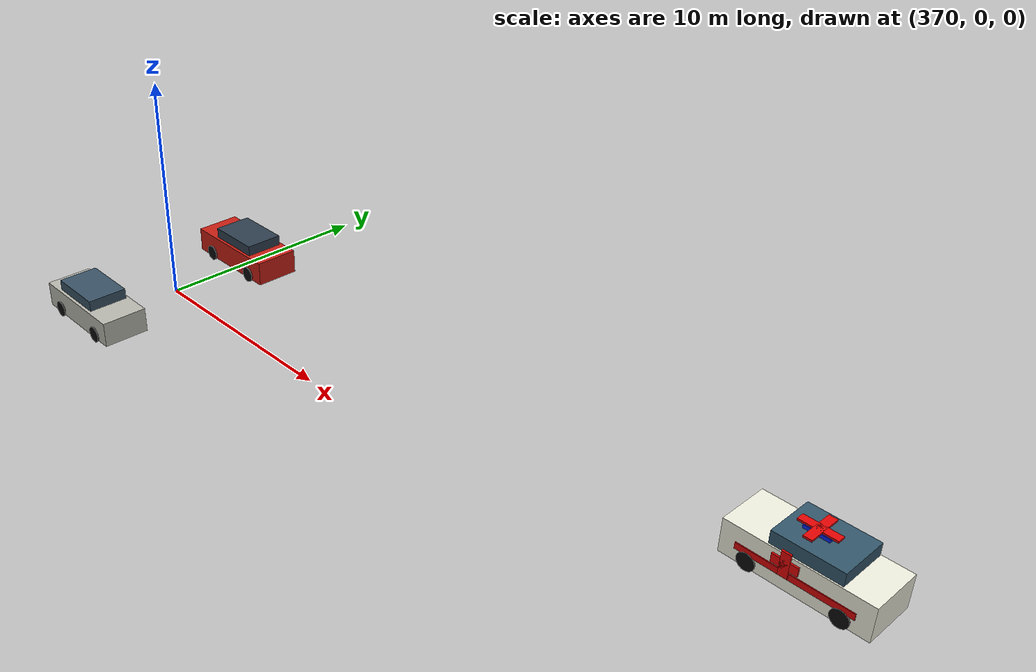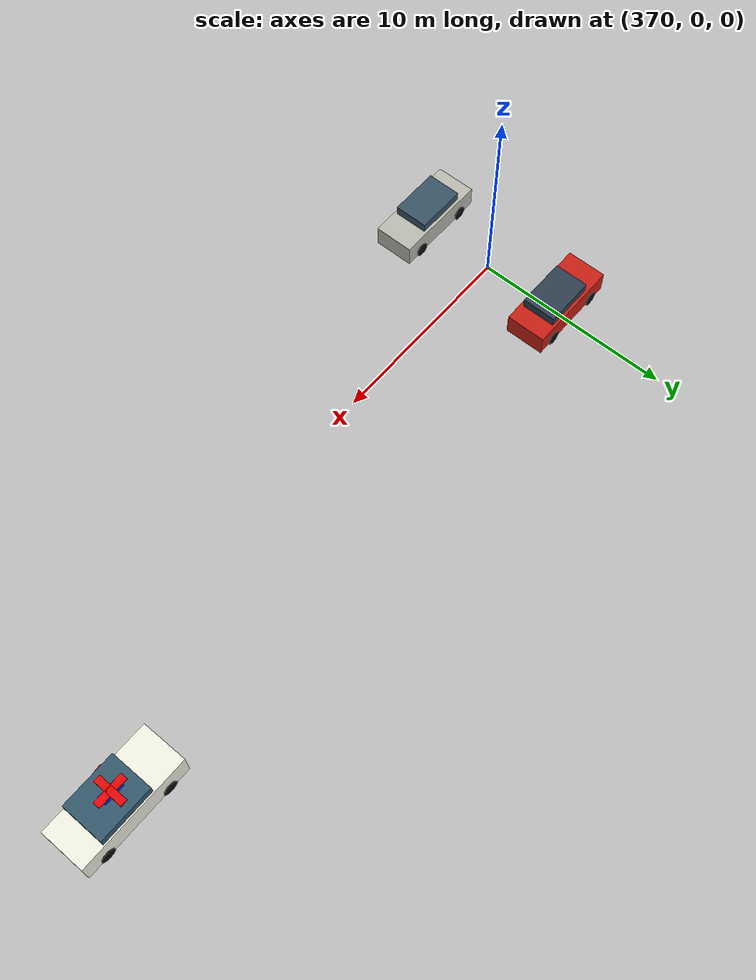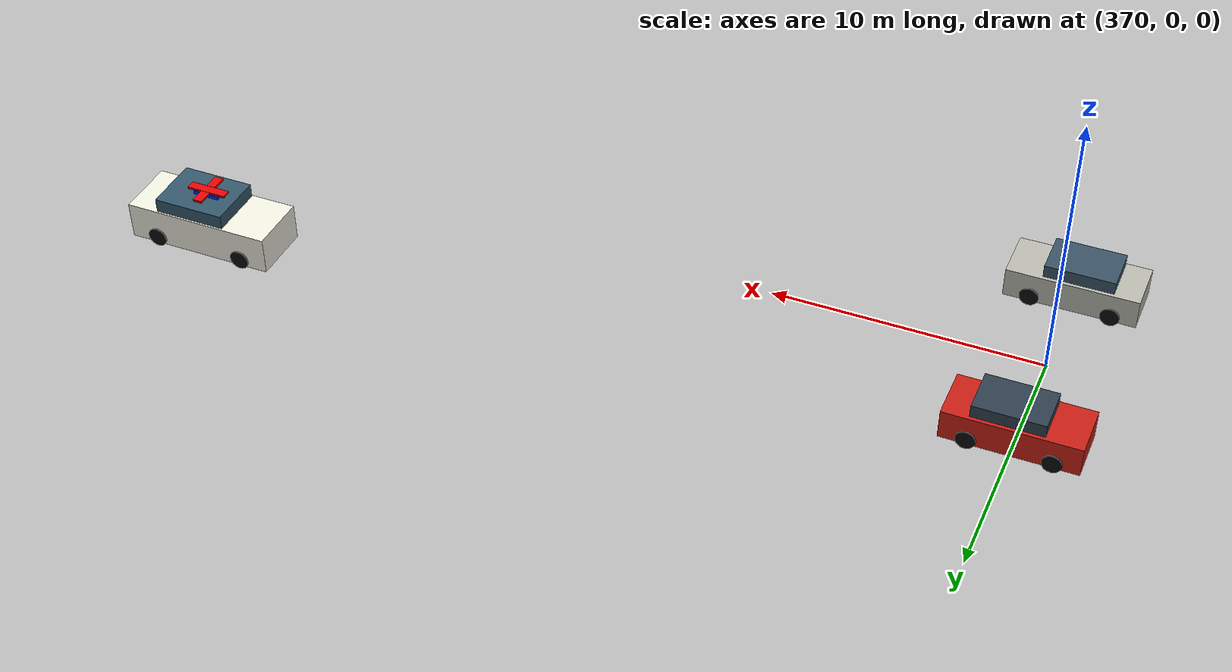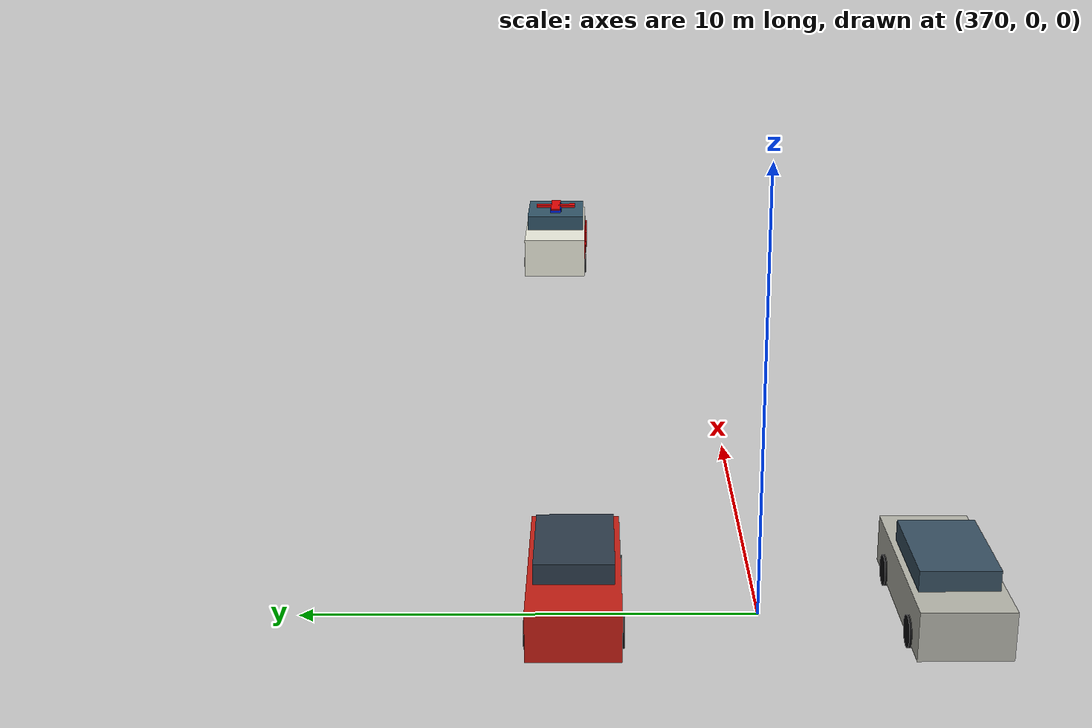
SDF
<sdf version="1.9">
 <world name="smart_city">
  <model name="downtown_car_17">
   <static>true</static>
   <pose>370 -4 0 0 0 0</pose>
   <link name="car">
    <visual name="body">
     <pose>0 0 0.72 0 0 0</pose>
     <geometry><box><size>4.8 2.0 1.1</size></box></geometry>
     <material><ambient>0.72 0.72 0.68 1</ambient><diffuse>0.72 0.72 0.68 1</diffuse></material>
    </visual>
    <visual name="cabin">
     <pose>-0.18 0 1.38 0 0 0</pose>
     <geometry><box><size>2.55 1.72 0.72</size></box></geometry>
     <material><ambient>0.22 0.32 0.39 1</ambient><diffuse>0.22 0.32 0.39 1</diffuse></material>
    </visual>
    <visual name="wheel_fl">
     <pose>1.45 0.96 0.36 1.5708 0 0</pose>
     <geometry><cylinder><radius>0.35</radius><length>0.18</length></cylinder></geometry>
     <material><ambient>0.04 0.04 0.045 1</ambient><diffuse>0.04 0.04 0.045 1</diffuse></material>
    </visual>
    <visual name="wheel_fr">
     <pose>1.45 -0.96 0.36 1.5708 0 0</pose>
     <geometry><cylinder><radius>0.35</radius><length>0.18</length></cylinder></geometry>
     <material><ambient>0.04 0.04 0.045 1</ambient><diffuse>0.04 0.04 0.045 1</diffuse></material>
    </visual>
    <visual name="wheel_rl">
     <pose>-1.45 0.96 0.36 1.5708 0 0</pose>
     <geometry><cylinder><radius>0.35</radius><length>0.18</length></cylinder></geometry>
     <material><ambient>0.04 0.04 0.045 1</ambient><diffuse>0.04 0.04 0.045 1</diffuse></material>
    </visual>
    <visual name="wheel_rr">
     <pose>-1.45 -0.96 0.36 1.5708 0 0</pose>
     <geometry><cylinder><radius>0.35</radius><length>0.18</length></cylinder></geometry>
     <material><ambient>0.04 0.04 0.045 1</ambient><diffuse>0.04 0.04 0.045 1</diffuse></material>
    </visual>
   </link>
  </model>
  <model name="downtown_car_25">
   <static>true</static>
   <pose>370 4 0 0 0 3.1416</pose>
   <link name="car">
    <visual name="body">
     <pose>0 0 0.72 0 0 0</pose>
     <geometry><box><size>4.8 2.0 1.1</size></box></geometry>
     <material><ambient>0.78 0.12 0.08 1</ambient><diffuse>0.78 0.12 0.08 1</diffuse></material>
    </visual>
    <visual name="cabin">
     <pose>-0.18 0 1.38 0 0 0</pose>
     <geometry><box><size>2.55 1.72 0.72</size></box></geometry>
     <material><ambient>0.18 0.24 0.30 1</ambient><diffuse>0.18 0.24 0.30 1</diffuse></material>
    </visual>
    <visual name="wheel_fl">
     <pose>1.45 0.96 0.36 1.5708 0 0</pose>
     <geometry><cylinder><radius>0.35</radius><length>0.18</length></cylinder></geometry>
     <material><ambient>0.04 0.04 0.045 1</ambient><diffuse>0.04 0.04 0.045 1</diffuse></material>
    </visual>
    <visual name="wheel_fr">
     <pose>1.45 -0.96 0.36 1.5708 0 0</pose>
     <geometry><cylinder><radius>0.35</radius><length>0.18</length></cylinder></geometry>
     <material><ambient>0.04 0.04 0.045 1</ambient><diffuse>0.04 0.04 0.045 1</diffuse></material>
    </visual>
    <visual name="wheel_rl">
     <pose>-1.45 0.96 0.36 1.5708 0 0</pose>
     <geometry><cylinder><radius>0.35</radius><length>0.18</length></cylinder></geometry>
     <material><ambient>0.04 0.04 0.045 1</ambient><diffuse>0.04 0.04 0.045 1</diffuse></material>
    </visual>
    <visual name="wheel_rr">
     <pose>-1.45 -0.96 0.36 1.5708 0 0</pose>
     <geometry><cylinder><radius>0.35</radius><length>0.18</length></cylinder></geometry>
     <material><ambient>0.04 0.04 0.045 1</ambient><diffuse>0.04 0.04 0.045 1</diffuse></material>
    </visual>
   </link>
  </model>
  <model name="district_ambulance_05">
   <static>true</static>
   <pose>400 5 0 0 0 3.1416</pose>
   <link name="ambulance">
    <visual name="body">
     <pose>0 0 0.82 0 0 0</pose>
     <geometry><box><size>5.6 2.25 1.4</size></box></geometry>
     <material><ambient>0.94 0.94 0.88 1</ambient><diffuse>0.94 0.94 0.88 1</diffuse></material>
    </visual>
    <visual name="medical_cabin">
     <pose>-0.25 0 1.62 0 0 0</pose>
     <geometry><box><size>2.7 2.12 0.86</size></box></geometry>
     <material><ambient>0.20 0.34 0.42 1</ambient><diffuse>0.20 0.34 0.42 1</diffuse></material>
    </visual>
    <visual name="red_side_stripe">
     <pose>0 1.14 0.76 0 0 0</pose>
     <geometry><box><size>4.4 0.05 0.26</size></box></geometry>
     <material><ambient>0.86 0.02 0.02 1</ambient><diffuse>0.86 0.02 0.02 1</diffuse></material>
    </visual>
    <visual name="red_side_cross_v">
     <pose>0.35 1.18 1.18 0 0 0</pose>
     <geometry><box><size>0.36 0.08 1.0</size></box></geometry>
     <material><ambient>0.9 0.02 0.02 1</ambient><diffuse>0.9 0.02 0.02 1</diffuse></material>
    </visual>
    <visual name="red_side_cross_h">
     <pose>0.35 1.18 1.18 0 0 0</pose>
     <geometry><box><size>1.0 0.08 0.36</size></box></geometry>
     <material><ambient>0.9 0.02 0.02 1</ambient><diffuse>0.9 0.02 0.02 1</diffuse></material>
    </visual>
    <visual name="lightbar">
     <pose>0 0 2.1 0 0 0</pose>
     <geometry><box><size>1.0 0.42 0.18</size></box></geometry>
     <material>
      <ambient>0.02 0.15 0.95 1</ambient>
      <diffuse>0.02 0.15 0.95 1</diffuse>
      <emissive>0.02 0.08 0.65 1</emissive>
     </material>
    </visual>
    <visual name="roof_cross_long">
     <pose>0 0 2.22 0 0 0</pose>
     <geometry><box><size>1.5 0.34 0.08</size></box></geometry>
     <material><ambient>0.9 0.02 0.02 1</ambient><diffuse>0.9 0.02 0.02 1</diffuse></material>
    </visual>
    <visual name="roof_cross_wide">
     <pose>0 0 2.22 0 0 0</pose>
     <geometry><box><size>0.34 1.5 0.08</size></box></geometry>
     <material><ambient>0.9 0.02 0.02 1</ambient><diffuse>0.9 0.02 0.02 1</diffuse></material>
    </visual>
    <visual name="wheel_fl">
     <pose>1.72 1.08 0.36 1.5708 0 0</pose>
     <geometry><cylinder><radius>0.36</radius><length>0.18</length></cylinder></geometry>
     <material><ambient>0.04 0.04 0.045 1</ambient><diffuse>0.04 0.04 0.045 1</diffuse></material>
    </visual>
    <visual name="wheel_fr">
     <pose>1.72 -1.08 0.36 1.5708 0 0</pose>
     <geometry><cylinder><radius>0.36</radius><length>0.18</length></cylinder></geometry>
     <material><ambient>0.04 0.04 0.045 1</ambient><diffuse>0.04 0.04 0.045 1</diffuse></material>
    </visual>
    <visual name="wheel_rl">
     <pose>-1.72 1.08 0.36 1.5708 0 0</pose>
     <geometry><cylinder><radius>0.36</radius><length>0.18</length></cylinder></geometry>
     <material><ambient>0.04 0.04 0.045 1</ambient><diffuse>0.04 0.04 0.045 1</diffuse></material>
    </visual>
    <visual name="wheel_rr">
     <pose>-1.72 -1.08 0.36 1.5708 0 0</pose>
     <geometry><cylinder><radius>0.36</radius><length>0.18</length></cylinder></geometry>
     <material><ambient>0.04 0.04 0.045 1</ambient><diffuse>0.04 0.04 0.045 1</diffuse></material>
    </visual>
   </link>
  </model>
 </world>
</sdf>
